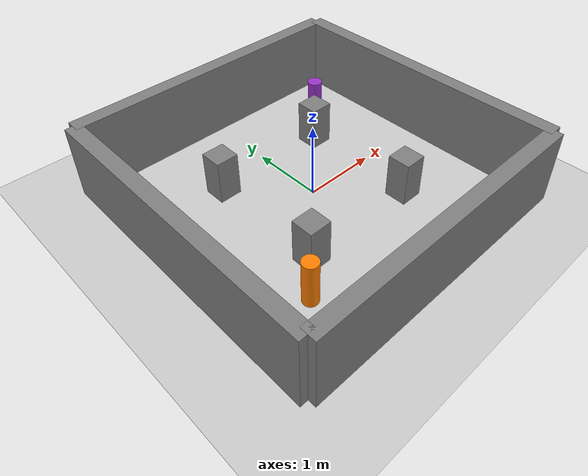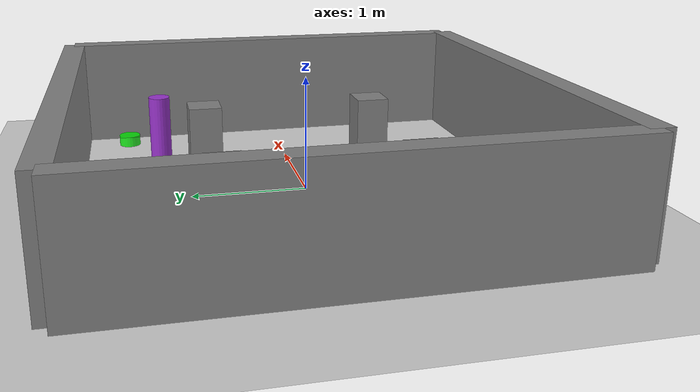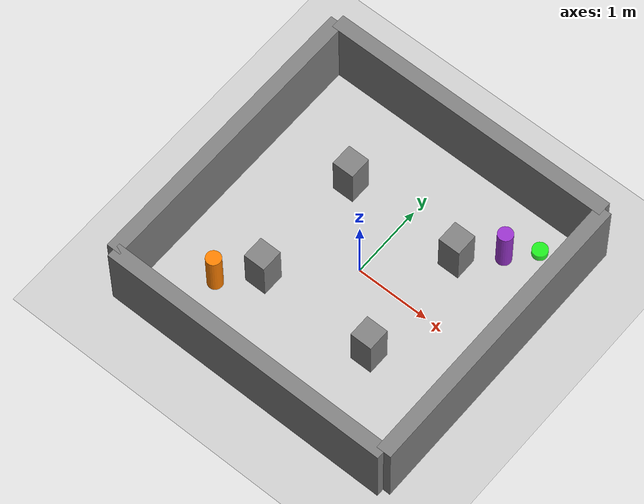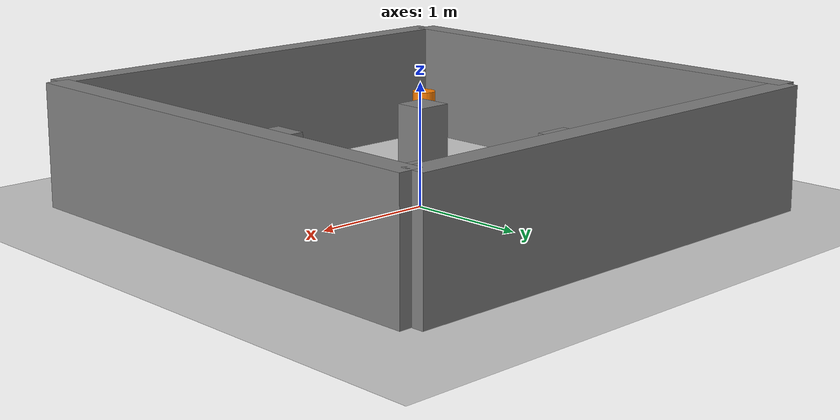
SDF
<?xml version="1.0" ?>
<sdf version="1.6">
  <world name="stage3_moving_obstacles">
    <!-- Stage 3: Bounded arena with static obstacles for obstacle avoidance training -->

    <!-- Global light source -->
    <include>
      <uri>model://sun</uri>
    </include>

    <!-- Ground plane -->
    <include>
      <uri>model://ground_plane</uri>
    </include>

    <!-- Physics settings -->
    <physics type="ode">
      <real_time_update_rate>1000.0</real_time_update_rate>
      <max_step_size>0.002</max_step_size>
      <real_time_factor>3</real_time_factor>
      <ode>
        <solver>
          <type>quick</type>
          <iters>20</iters>
          <sor>1.3</sor>
        </solver>
        <constraints>
          <cfm>0.00001</cfm>
          <erp>0.2</erp>
          <contact_max_correcting_vel>2000.000000</contact_max_correcting_vel>
          <contact_surface_layer>0.01000</contact_surface_layer>
        </constraints>
      </ode>
    </physics>

    <!-- Scene settings -->
    <scene>
      <ambient>0.4 0.4 0.4 1</ambient>
      <background>0.7 0.7 0.7 1</background>
      <shadows>false</shadows>
    </scene>

    <!-- Camera view -->
    <gui fullscreen='0'>
      <camera name='user_camera'>
        <pose>0 -8 8 0 0.7 1.57</pose>
        <view_controller>orbit</view_controller>
      </camera>
    </gui>

    <!-- BOUNDED ARENA: 4x4 meter box made of walls -->

    <!-- Wall 1: North (y = 2) -->
    <model name="wall_north">
      <static>true</static>
      <pose>0 2 0.5 0 0 0</pose>
      <link name="link">
        <collision name="collision">
          <geometry>
            <box>
              <size>4 0.2 1</size>
            </box>
          </geometry>
        </collision>
        <visual name="visual">
          <geometry>
            <box>
              <size>4 0.2 1</size>
            </box>
          </geometry>
          <material>
            <ambient>0.5 0.5 0.5 1</ambient>
            <diffuse>0.5 0.5 0.5 1</diffuse>
          </material>
        </visual>
      </link>
    </model>

    <!-- Wall 2: South (y = -2) -->
    <model name="wall_south">
      <static>true</static>
      <pose>0 -2 0.5 0 0 0</pose>
      <link name="link">
        <collision name="collision">
          <geometry>
            <box>
              <size>4 0.2 1</size>
            </box>
          </geometry>
        </collision>
        <visual name="visual">
          <geometry>
            <box>
              <size>4 0.2 1</size>
            </box>
          </geometry>
          <material>
            <ambient>0.5 0.5 0.5 1</ambient>
            <diffuse>0.5 0.5 0.5 1</diffuse>
          </material>
        </visual>
      </link>
    </model>

    <!-- Wall 3: East (x = 2) -->
    <model name="wall_east">
      <static>true</static>
      <pose>2 0 0.5 0 0 0</pose>
      <link name="link">
        <collision name="collision">
          <geometry>
            <box>
              <size>0.2 4 1</size>
            </box>
          </geometry>
        </collision>
        <visual name="visual">
          <geometry>
            <box>
              <size>0.2 4 1</size>
            </box>
          </geometry>
          <material>
            <ambient>0.5 0.5 0.5 1</ambient>
            <diffuse>0.5 0.5 0.5 1</diffuse>
          </material>
        </visual>
      </link>
    </model>

    <!-- Wall 4: West (x = -2) -->
    <model name="wall_west">
      <static>true</static>
      <pose>-2 0 0.5 0 0 0</pose>
      <link name="link">
        <collision name="collision">
          <geometry>
            <box>
              <size>0.2 4 1</size>
            </box>
          </geometry>
        </collision>
        <visual name="visual">
          <geometry>
            <box>
              <size>0.2 4 1</size>
            </box>
          </geometry>
          <material>
            <ambient>0.5 0.5 0.5 1</ambient>
            <diffuse>0.5 0.5 0.5 1</diffuse>
          </material>
        </visual>
      </link>
    </model>

    <!-- STATIC OBSTACLES: 3 square boxes inside arena -->

    <!-- Obstacle 1: Red box in upper-right quadrant -->
    <model name="obstacle_1">
      <static>true</static>
      <pose>0.8 0.8 0.3 0 0 0</pose>
      <link name="link">
        <collision name="collision">
          <geometry>
            <box>
              <size>0.3 0.3 0.6</size>
            </box>
          </geometry>
        </collision>
        <visual name="visual">
          <geometry>
            <box>
              <size>0.3 0.3 0.6</size>
            </box>
          </geometry>
          <material>
            <ambient>0.5 0.5 0.5 1</ambient>
            <diffuse>0.5 0.5 0.5 1</diffuse>
          </material>
        </visual>
      </link>
    </model>

    <!-- Obstacle 2: Blue box in lower-left quadrant -->
    <model name="obstacle_2">
      <static>true</static>
      <pose>-0.8 -0.8 0.3 0 0 0</pose>
      <link name="link">
        <collision name="collision">
          <geometry>
            <box>
              <size>0.3 0.3 0.6</size>
            </box>
          </geometry>
        </collision>
        <visual name="visual">
          <geometry>
            <box>
              <size>0.3 0.3 0.6</size>
            </box>
          </geometry>
          <material>
            <ambient>0.5 0.5 0.5 1</ambient>
            <diffuse>0.5 0.5 0.5 1</diffuse>
          </material>
        </visual>
      </link>
    </model>

    <!-- Obstacle 3: Green box in lower-right area -->
    <model name="obstacle_3">
      <static>true</static>
      <pose>0.8 -0.8 0.3 0 0 0</pose>
      <link name="link">
        <collision name="collision">
          <geometry>
            <box>
              <size>0.3 0.3 0.6</size>
            </box>
          </geometry>
        </collision>
        <visual name="visual">
          <geometry>
            <box>
              <size>0.3 0.3 0.6</size>
            </box>
          </geometry>
          <material>
            <ambient>0.5 0.5 0.5 1</ambient>
            <diffuse>0.5 0.5 0.5 1</diffuse>
          </material>
        </visual>
      </link>
    </model>

    <model name="obstacle_4">
      <static>true</static>
      <pose>-0.8 0.8 0.3 0 0 0</pose>
      <link name="link">
        <collision name="collision">
          <geometry>
            <box>
              <size>0.3 0.3 0.6</size>
            </box>
          </geometry>
        </collision>
        <visual name="visual">
          <geometry>
            <box>
              <size>0.3 0.3 0.6</size>
            </box>
          </geometry>
          <material>
            <ambient>0.5 0.5 0.5 1</ambient>
            <diffuse>0.5 0.5 0.5 1</diffuse>
          </material>
        </visual>
      </link>
    </model>

    <!-- Goal Marker -->
    <model name="goal_marker">
      <static>false</static>
      <pose>1.5 1.5 0.1 0 0 0</pose>
      <link name="link">
        <gravity>false</gravity>
        <kinematic>true</kinematic>
          <!-- Collision geometry - made passthrough for sensors -->
        <collision name="collision">
          <laser_retro>0</laser_retro>
          <max_contacts>0</max_contacts>
          <geometry>
            <cylinder>
              <radius>0.1</radius>
              <length>0.1</length>
            </cylinder>
          </geometry>
          <surface>
            <contact>
              <collide_without_contact>true</collide_without_contact>
            </contact>
          </surface>
        </collision>

        <visual name="visual">
          <geometry>
            <cylinder>
              <radius>0.1</radius>
              <length>0.1</length>
            </cylinder>
          </geometry>
          <material>
            <ambient>0 1 0 0.8</ambient>
            <diffuse>0 1 0 0.8</diffuse>
            <specular>0 1 0 1</specular>
            <emissive>0 0.5 0 1</emissive>
          </material>
        </visual>
      </link>
    </model>

    <!-- MOVING OBSTACLES: 2 cylinders moved by external ROS node via /gazebo/set_model_state -->

    <!-- Moving Cylinder 1: Orange cylinder starting at bottom-left -->
    <model name="moving_obstacle_1">
      <static>false</static>
      <pose>-1.2 -1.2 0.3 0 0 0</pose>
      <link name="link">
        <gravity>false</gravity>
        <kinematic>true</kinematic>
        <collision name="collision">
          <geometry>
            <cylinder>
              <radius>0.1</radius>
              <length>0.6</length>
            </cylinder>
          </geometry>
        </collision>
        <visual name="visual">
          <geometry>
            <cylinder>
              <radius>0.1</radius>
              <length>0.6</length>
            </cylinder>
          </geometry>
          <material>
            <ambient>1 0.5 0 1</ambient>
            <diffuse>1 0.5 0 1</diffuse>
          </material>
        </visual>
      </link>
    </model>

    <!-- Moving Cylinder 2: Purple cylinder starting at top-right -->
    <model name="moving_obstacle_2">
      <static>false</static>
      <pose>1.2 1.2 0.3 0 0 0</pose>
      <link name="link">
        <gravity>false</gravity>
        <kinematic>true</kinematic>
        <collision name="collision">
          <geometry>
            <cylinder>
              <radius>0.1</radius>
              <length>0.6</length>
            </cylinder>
          </geometry>
        </collision>
        <visual name="visual">
          <geometry>
            <cylinder>
              <radius>0.1</radius>
              <length>0.6</length>
            </cylinder>
          </geometry>
          <material>
            <ambient>0.6 0.2 0.8 1</ambient>
            <diffuse>0.6 0.2 0.8 1</diffuse>
          </material>
        </visual>
      </link>
    </model>

  </world>
</sdf>
